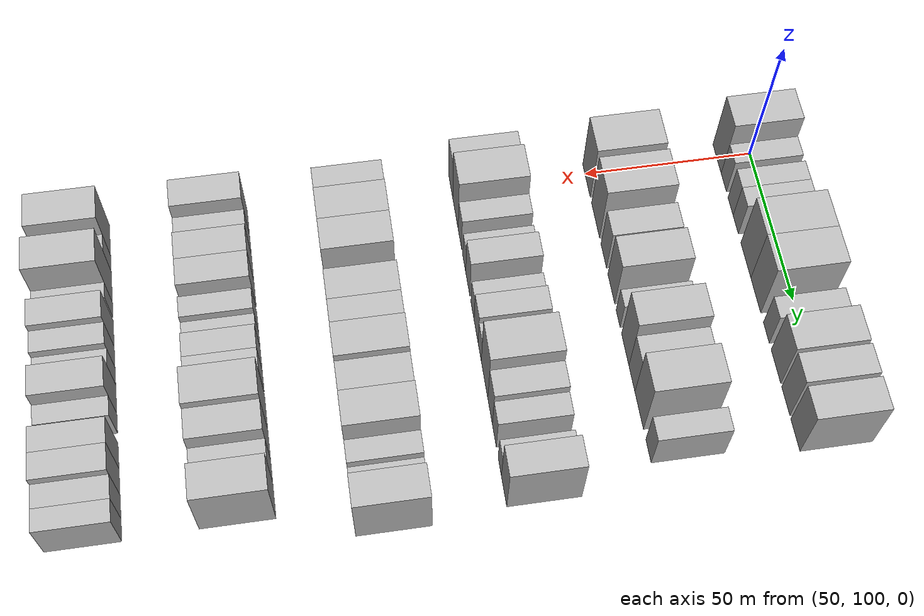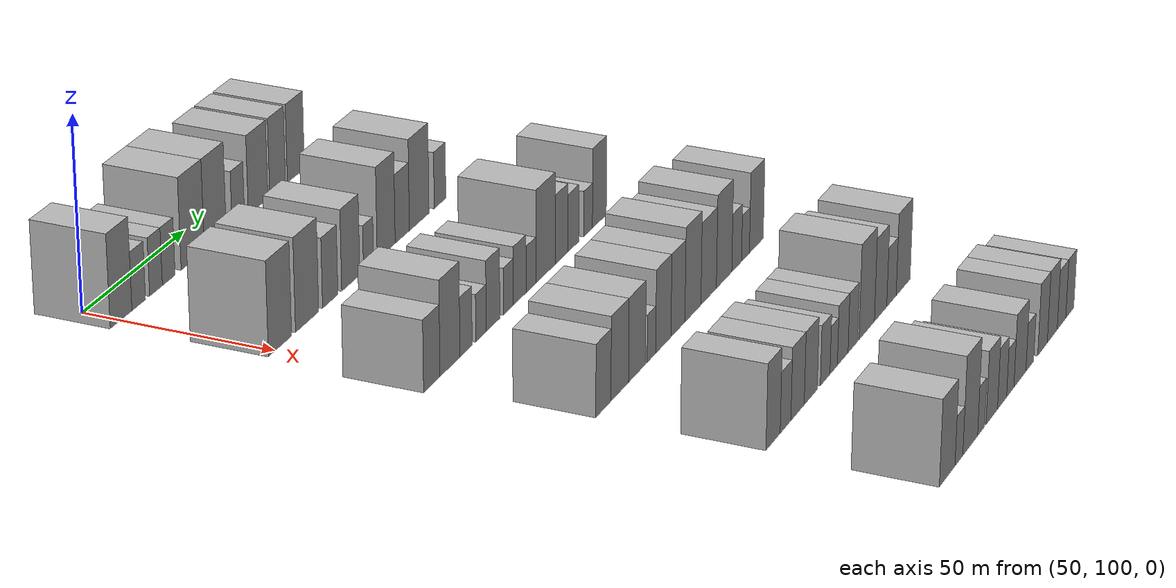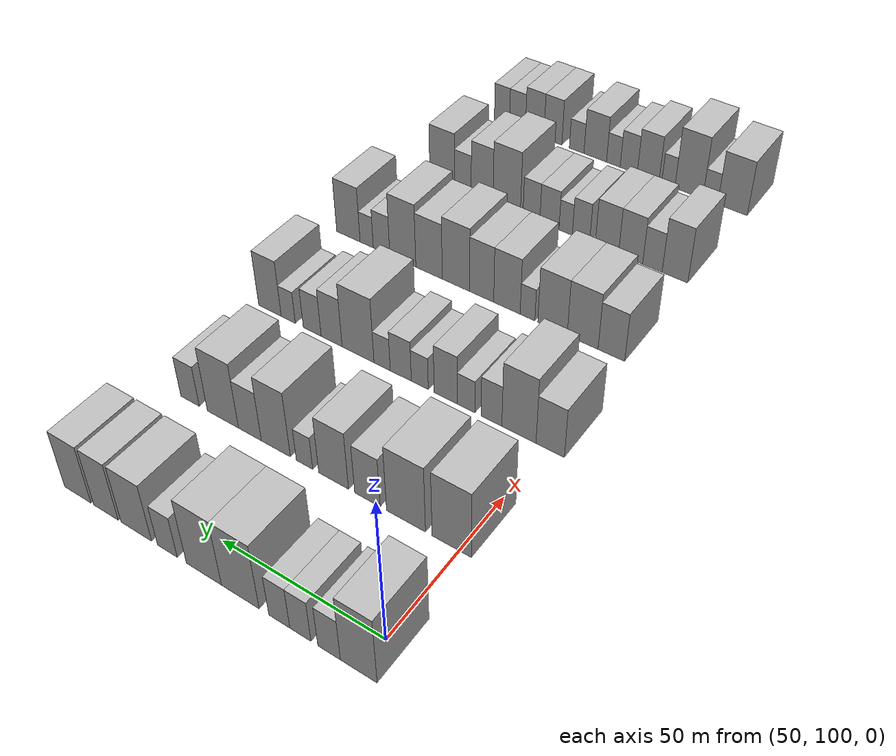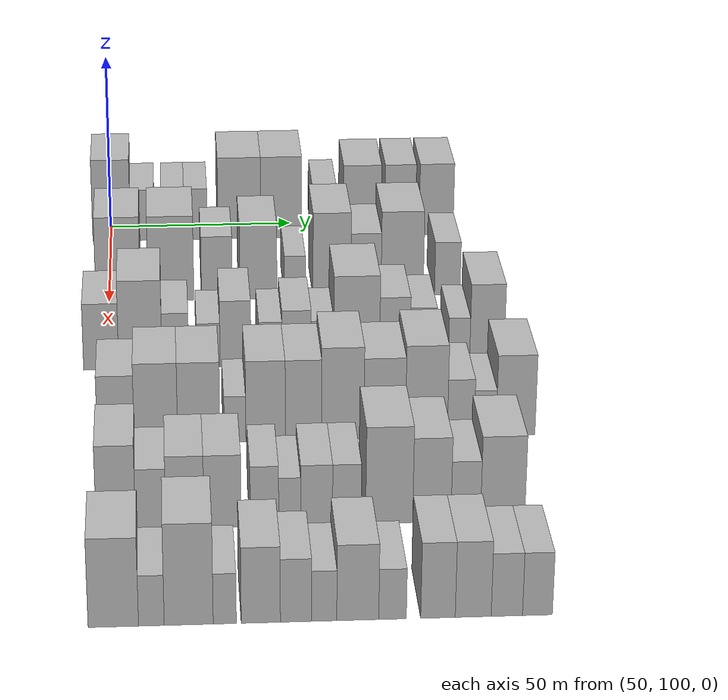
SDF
<sdf version="1.6">
 <world name="default">
  <model name="building_82">
   <static>1</static>
   <pose>50.0000 100.2320 0 0.000000 0.000000 0.000000</pose>
   <link name="link">
    <pose>0 0 12.00 0 0 0</pose>
    <collision name="collision"><geometry><box><size>20.0000 10.3977 24.0000</size></box></geometry></collision>
    <visual name="visual">
     <cast_shadows>0</cast_shadows>
     <geometry><box><size>20.0000 10.3977 24.0000</size></box></geometry>
     <material>
      <script>
       <uri>model://HANNAS_wall/materials/scripts</uri>
       <uri>model://HANNAS_wall/materials/textures</uri>
       <name>vrc/HANNAS_wall</name>
      </script>
     </material>
    </visual>
   </link>
  </model>
  <model name="building_83">
   <static>1</static>
   <pose>50.0000 108.7038 0 0.000000 0.000000 0.000000</pose>
   <link name="link">
    <pose>0 0 7.50 0 0 0</pose>
    <collision name="collision"><geometry><box><size>20.0000 6.5460 15.0000</size></box></geometry></collision>
    <visual name="visual">
     <cast_shadows>0</cast_shadows>
     <geometry><box><size>20.0000 6.5460 15.0000</size></box></geometry>
     <material>
      <script>
       <uri>model://HANNAS_wall/materials/scripts</uri>
       <uri>model://HANNAS_wall/materials/textures</uri>
       <name>vrc/HANNAS_wall</name>
      </script>
     </material>
    </visual>
   </link>
  </model>
  <model name="building_84">
   <static>1</static>
   <pose>50.0000 117.1123 0 0.000000 0.000000 0.000000</pose>
   <link name="link">
    <pose>0 0 7.50 0 0 0</pose>
    <collision name="collision"><geometry><box><size>20.0000 6.2710 15.0000</size></box></geometry></collision>
    <visual name="visual">
     <cast_shadows>0</cast_shadows>
     <geometry><box><size>20.0000 6.2710 15.0000</size></box></geometry>
     <material>
      <script>
       <uri>model://HANNAS_wall/materials/scripts</uri>
       <uri>model://HANNAS_wall/materials/textures</uri>
       <name>vrc/HANNAS_wall</name>
      </script>
     </material>
    </visual>
   </link>
  </model>
  <model name="building_85">
   <static>1</static>
   <pose>50.0000 123.4167 0 0.000000 0.000000 0.000000</pose>
   <link name="link">
    <pose>0 0 7.50 0 0 0</pose>
    <collision name="collision"><geometry><box><size>20.0000 6.3378 15.0000</size></box></geometry></collision>
    <visual name="visual">
     <cast_shadows>0</cast_shadows>
     <geometry><box><size>20.0000 6.3378 15.0000</size></box></geometry>
     <material>
      <script>
       <uri>model://HANNAS_wall/materials/scripts</uri>
       <uri>model://HANNAS_wall/materials/textures</uri>
       <name>vrc/HANNAS_wall</name>
      </script>
     </material>
    </visual>
   </link>
  </model>
  <model name="building_86">
   <static>1</static>
   <pose>50.0000 135.4706 0 0.000000 0.000000 0.000000</pose>
   <link name="link">
    <pose>0 0 12.00 0 0 0</pose>
    <collision name="collision"><geometry><box><size>20.0000 11.7699 24.0000</size></box></geometry></collision>
    <visual name="visual">
     <cast_shadows>0</cast_shadows>
     <geometry><box><size>20.0000 11.7699 24.0000</size></box></geometry>
     <material>
      <script>
       <uri>model://HANNAS_wall/materials/scripts</uri>
       <uri>model://HANNAS_wall/materials/textures</uri>
       <name>vrc/HANNAS_wall</name>
      </script>
     </material>
    </visual>
   </link>
  </model>
  <model name="building_87">
   <static>1</static>
   <pose>50.0000 147.0180 0 0.000000 0.000000 0.000000</pose>
   <link name="link">
    <pose>0 0 12.00 0 0 0</pose>
    <collision name="collision"><geometry><box><size>20.0000 11.3249 24.0000</size></box></geometry></collision>
    <visual name="visual">
     <cast_shadows>0</cast_shadows>
     <geometry><box><size>20.0000 11.3249 24.0000</size></box></geometry>
     <material>
      <script>
       <uri>model://HANNAS_wall/materials/scripts</uri>
       <uri>model://HANNAS_wall/materials/textures</uri>
       <name>vrc/HANNAS_wall</name>
      </script>
     </material>
    </visual>
   </link>
  </model>
  <model name="building_88">
   <static>1</static>
   <pose>50.0000 158.9779 0 0.000000 0.000000 0.000000</pose>
   <link name="link">
    <pose>0 0 7.50 0 0 0</pose>
    <collision name="collision"><geometry><box><size>20.0000 6.5948 15.0000</size></box></geometry></collision>
    <visual name="visual">
     <cast_shadows>0</cast_shadows>
     <geometry><box><size>20.0000 6.5948 15.0000</size></box></geometry>
     <material>
      <script>
       <uri>model://HANNAS_wall/materials/scripts</uri>
       <uri>model://HANNAS_wall/materials/textures</uri>
       <name>vrc/HANNAS_wall</name>
      </script>
     </material>
    </visual>
   </link>
  </model>
  <model name="building_89">
   <static>1</static>
   <pose>50.0000 169.5128 0 0.000000 0.000000 0.000000</pose>
   <link name="link">
    <pose>0 0 10.50 0 0 0</pose>
    <collision name="collision"><geometry><box><size>20.0000 10.4752 21.0000</size></box></geometry></collision>
    <visual name="visual">
     <cast_shadows>0</cast_shadows>
     <geometry><box><size>20.0000 10.4752 21.0000</size></box></geometry>
     <material>
      <script>
       <uri>model://HANNAS_wall/materials/scripts</uri>
       <uri>model://HANNAS_wall/materials/textures</uri>
       <name>vrc/HANNAS_wall</name>
      </script>
     </material>
    </visual>
   </link>
  </model>
  <model name="building_90">
   <static>1</static>
   <pose>50.0000 180.0520 0 0.000000 0.000000 0.000000</pose>
   <link name="link">
    <pose>0 0 10.50 0 0 0</pose>
    <collision name="collision"><geometry><box><size>20.0000 8.6031 21.0000</size></box></geometry></collision>
    <visual name="visual">
     <cast_shadows>0</cast_shadows>
     <geometry><box><size>20.0000 8.6031 21.0000</size></box></geometry>
     <material>
      <script>
       <uri>model://HANNAS_wall/materials/scripts</uri>
       <uri>model://HANNAS_wall/materials/textures</uri>
       <name>vrc/HANNAS_wall</name>
      </script>
     </material>
    </visual>
   </link>
  </model>
  <model name="building_91">
   <static>1</static>
   <pose>50.0000 190.0894 0 0.000000 0.000000 0.000000</pose>
   <link name="link">
    <pose>0 0 10.50 0 0 0</pose>
    <collision name="collision"><geometry><box><size>20.0000 9.4717 21.0000</size></box></geometry></collision>
    <visual name="visual">
     <cast_shadows>0</cast_shadows>
     <geometry><box><size>20.0000 9.4717 21.0000</size></box></geometry>
     <material>
      <script>
       <uri>model://HANNAS_wall/materials/scripts</uri>
       <uri>model://HANNAS_wall/materials/textures</uri>
       <name>vrc/HANNAS_wall</name>
      </script>
     </material>
    </visual>
   </link>
  </model>
  <model name="building_222">
   <static>1</static>
   <pose>90.0000 102.3803 0 0.000000 0.000000 0.000000</pose>
   <link name="link">
    <pose>0 0 12.00 0 0 0</pose>
    <collision name="collision"><geometry><box><size>20.0000 11.6992 24.0000</size></box></geometry></collision>
    <visual name="visual">
     <cast_shadows>0</cast_shadows>
     <geometry><box><size>20.0000 11.6992 24.0000</size></box></geometry>
     <material>
      <script>
       <uri>model://HANNAS_wall/materials/scripts</uri>
       <uri>model://HANNAS_wall/materials/textures</uri>
       <name>vrc/HANNAS_wall</name>
      </script>
     </material>
    </visual>
   </link>
  </model>
  <model name="building_223">
   <static>1</static>
   <pose>90.0000 116.2236 0 0.000000 0.000000 0.000000</pose>
   <link name="link">
    <pose>0 0 12.00 0 0 0</pose>
    <collision name="collision"><geometry><box><size>20.0000 11.9874 24.0000</size></box></geometry></collision>
    <visual name="visual">
     <cast_shadows>0</cast_shadows>
     <geometry><box><size>20.0000 11.9874 24.0000</size></box></geometry>
     <material>
      <script>
       <uri>model://HANNAS_wall/materials/scripts</uri>
       <uri>model://HANNAS_wall/materials/textures</uri>
       <name>vrc/HANNAS_wall</name>
      </script>
     </material>
    </visual>
   </link>
  </model>
  <model name="building_224">
   <static>1</static>
   <pose>90.0000 128.2610 0 0.000000 0.000000 0.000000</pose>
   <link name="link">
    <pose>0 0 9.00 0 0 0</pose>
    <collision name="collision"><geometry><box><size>20.0000 8.0875 18.0000</size></box></geometry></collision>
    <visual name="visual">
     <cast_shadows>0</cast_shadows>
     <geometry><box><size>20.0000 8.0875 18.0000</size></box></geometry>
     <material>
      <script>
       <uri>model://HANNAS_wall/materials/scripts</uri>
       <uri>model://HANNAS_wall/materials/textures</uri>
       <name>vrc/HANNAS_wall</name>
      </script>
     </material>
    </visual>
   </link>
  </model>
  <model name="building_225">
   <static>1</static>
   <pose>90.0000 139.1630 0 0.000000 0.000000 0.000000</pose>
   <link name="link">
    <pose>0 0 10.50 0 0 0</pose>
    <collision name="collision"><geometry><box><size>20.0000 9.7165 21.0000</size></box></geometry></collision>
    <visual name="visual">
     <cast_shadows>0</cast_shadows>
     <geometry><box><size>20.0000 9.7165 21.0000</size></box></geometry>
     <material>
      <script>
       <uri>model://HANNAS_wall/materials/scripts</uri>
       <uri>model://HANNAS_wall/materials/textures</uri>
       <name>vrc/HANNAS_wall</name>
      </script>
     </material>
    </visual>
   </link>
  </model>
  <model name="building_226">
   <static>1</static>
   <pose>90.0000 148.7677 0 0.000000 0.000000 0.000000</pose>
   <link name="link">
    <pose>0 0 6.00 0 0 0</pose>
    <collision name="collision"><geometry><box><size>20.0000 5.4930 12.0000</size></box></geometry></collision>
    <visual name="visual">
     <cast_shadows>0</cast_shadows>
     <geometry><box><size>20.0000 5.4930 12.0000</size></box></geometry>
     <material>
      <script>
       <uri>model://HANNAS_wall/materials/scripts</uri>
       <uri>model://HANNAS_wall/materials/textures</uri>
       <name>vrc/HANNAS_wall</name>
      </script>
     </material>
    </visual>
   </link>
  </model>
  <model name="building_227">
   <static>1</static>
   <pose>90.0000 158.5005 0 0.000000 0.000000 0.000000</pose>
   <link name="link">
    <pose>0 0 12.00 0 0 0</pose>
    <collision name="collision"><geometry><box><size>20.0000 9.9727 24.0000</size></box></geometry></collision>
    <visual name="visual">
     <cast_shadows>0</cast_shadows>
     <geometry><box><size>20.0000 9.9727 24.0000</size></box></geometry>
     <material>
      <script>
       <uri>model://HANNAS_wall/materials/scripts</uri>
       <uri>model://HANNAS_wall/materials/textures</uri>
       <name>vrc/HANNAS_wall</name>
      </script>
     </material>
    </visual>
   </link>
  </model>
  <model name="building_228">
   <static>1</static>
   <pose>90.0000 167.4890 0 0.000000 0.000000 0.000000</pose>
   <link name="link">
    <pose>0 0 9.00 0 0 0</pose>
    <collision name="collision"><geometry><box><size>20.0000 8.0042 18.0000</size></box></geometry></collision>
    <visual name="visual">
     <cast_shadows>0</cast_shadows>
     <geometry><box><size>20.0000 8.0042 18.0000</size></box></geometry>
     <material>
      <script>
       <uri>model://HANNAS_wall/materials/scripts</uri>
       <uri>model://HANNAS_wall/materials/textures</uri>
       <name>vrc/HANNAS_wall</name>
      </script>
     </material>
    </visual>
   </link>
  </model>
  <model name="building_229">
   <static>1</static>
   <pose>90.0000 177.0655 0 0.000000 0.000000 0.000000</pose>
   <link name="link">
    <pose>0 0 12.00 0 0 0</pose>
    <collision name="collision"><geometry><box><size>20.0000 11.1488 24.0000</size></box></geometry></collision>
    <visual name="visual">
     <cast_shadows>0</cast_shadows>
     <geometry><box><size>20.0000 11.1488 24.0000</size></box></geometry>
     <material>
      <script>
       <uri>model://HANNAS_wall/materials/scripts</uri>
       <uri>model://HANNAS_wall/materials/textures</uri>
       <name>vrc/HANNAS_wall</name>
      </script>
     </material>
    </visual>
   </link>
  </model>
  <model name="building_230">
   <static>1</static>
   <pose>90.0000 189.0228 0 0.000000 0.000000 0.000000</pose>
   <link name="link">
    <pose>0 0 7.50 0 0 0</pose>
    <collision name="collision"><geometry><box><size>20.0000 6.7658 15.0000</size></box></geometry></collision>
    <visual name="visual">
     <cast_shadows>0</cast_shadows>
     <geometry><box><size>20.0000 6.7658 15.0000</size></box></geometry>
     <material>
      <script>
       <uri>model://HANNAS_wall/materials/scripts</uri>
       <uri>model://HANNAS_wall/materials/textures</uri>
       <name>vrc/HANNAS_wall</name>
      </script>
     </material>
    </visual>
   </link>
  </model>
  <model name="building_358">
   <static>1</static>
   <pose>130.0000 98.5288 0 0.000000 0.000000 0.000000</pose>
   <link name="link">
    <pose>0 0 9.00 0 0 0</pose>
    <collision name="collision"><geometry><box><size>20.0000 8.7118 18.0000</size></box></geometry></collision>
    <visual name="visual">
     <cast_shadows>0</cast_shadows>
     <geometry><box><size>20.0000 8.7118 18.0000</size></box></geometry>
     <material>
      <script>
       <uri>model://HANNAS_wall/materials/scripts</uri>
       <uri>model://HANNAS_wall/materials/textures</uri>
       <name>vrc/HANNAS_wall</name>
      </script>
     </material>
    </visual>
   </link>
  </model>
  <model name="building_359">
   <static>1</static>
   <pose>130.0000 108.2567 0 0.000000 0.000000 0.000000</pose>
   <link name="link">
    <pose>0 0 12.00 0 0 0</pose>
    <collision name="collision"><geometry><box><size>20.0000 10.7441 24.0000</size></box></geometry></collision>
    <visual name="visual">
     <cast_shadows>0</cast_shadows>
     <geometry><box><size>20.0000 10.7441 24.0000</size></box></geometry>
     <material>
      <script>
       <uri>model://HANNAS_wall/materials/scripts</uri>
       <uri>model://HANNAS_wall/materials/textures</uri>
       <name>vrc/HANNAS_wall</name>
      </script>
     </material>
    </visual>
   </link>
  </model>
  <model name="building_360">
   <static>1</static>
   <pose>130.0000 116.9499 0 0.000000 0.000000 0.000000</pose>
   <link name="link">
    <pose>0 0 7.50 0 0 0</pose>
    <collision name="collision"><geometry><box><size>20.0000 6.6422 15.0000</size></box></geometry></collision>
    <visual name="visual">
     <cast_shadows>0</cast_shadows>
     <geometry><box><size>20.0000 6.6422 15.0000</size></box></geometry>
     <material>
      <script>
       <uri>model://HANNAS_wall/materials/scripts</uri>
       <uri>model://HANNAS_wall/materials/textures</uri>
       <name>vrc/HANNAS_wall</name>
      </script>
     </material>
    </visual>
   </link>
  </model>
  <model name="building_361">
   <static>1</static>
   <pose>130.0000 125.1638 0 0.000000 0.000000 0.000000</pose>
   <link name="link">
    <pose>0 0 6.00 0 0 0</pose>
    <collision name="collision"><geometry><box><size>20.0000 5.7855 12.0000</size></box></geometry></collision>
    <visual name="visual">
     <cast_shadows>0</cast_shadows>
     <geometry><box><size>20.0000 5.7855 12.0000</size></box></geometry>
     <material>
      <script>
       <uri>model://HANNAS_wall/materials/scripts</uri>
       <uri>model://HANNAS_wall/materials/textures</uri>
       <name>vrc/HANNAS_wall</name>
      </script>
     </material>
    </visual>
   </link>
  </model>
  <model name="building_362">
   <static>1</static>
   <pose>130.0000 131.8885 0 0.000000 0.000000 0.000000</pose>
   <link name="link">
    <pose>0 0 9.00 0 0 0</pose>
    <collision name="collision"><geometry><box><size>20.0000 7.6640 18.0000</size></box></geometry></collision>
    <visual name="visual">
     <cast_shadows>0</cast_shadows>
     <geometry><box><size>20.0000 7.6640 18.0000</size></box></geometry>
     <material>
      <script>
       <uri>model://HANNAS_wall/materials/scripts</uri>
       <uri>model://HANNAS_wall/materials/textures</uri>
       <name>vrc/HANNAS_wall</name>
      </script>
     </material>
    </visual>
   </link>
  </model>
  <model name="building_363">
   <static>1</static>
   <pose>130.0000 140.5915 0 0.000000 0.000000 0.000000</pose>
   <link name="link">
    <pose>0 0 6.00 0 0 0</pose>
    <collision name="collision"><geometry><box><size>20.0000 5.7419 12.0000</size></box></geometry></collision>
    <visual name="visual">
     <cast_shadows>0</cast_shadows>
     <geometry><box><size>20.0000 5.7419 12.0000</size></box></geometry>
     <material>
      <script>
       <uri>model://HANNAS_wall/materials/scripts</uri>
       <uri>model://HANNAS_wall/materials/textures</uri>
       <name>vrc/HANNAS_wall</name>
      </script>
     </material>
    </visual>
   </link>
  </model>
  <model name="building_364">
   <static>1</static>
   <pose>130.0000 147.1009 0 0.000000 0.000000 0.000000</pose>
   <link name="link">
    <pose>0 0 7.50 0 0 0</pose>
    <collision name="collision"><geometry><box><size>20.0000 7.2769 15.0000</size></box></geometry></collision>
    <visual name="visual">
     <cast_shadows>0</cast_shadows>
     <geometry><box><size>20.0000 7.2769 15.0000</size></box></geometry>
     <material>
      <script>
       <uri>model://HANNAS_wall/materials/scripts</uri>
       <uri>model://HANNAS_wall/materials/textures</uri>
       <name>vrc/HANNAS_wall</name>
      </script>
     </material>
    </visual>
   </link>
  </model>
  <model name="building_365">
   <static>1</static>
   <pose>130.0000 153.5853 0 0.000000 0.000000 0.000000</pose>
   <link name="link">
    <pose>0 0 6.00 0 0 0</pose>
    <collision name="collision"><geometry><box><size>20.0000 5.6920 12.0000</size></box></geometry></collision>
    <visual name="visual">
     <cast_shadows>0</cast_shadows>
     <geometry><box><size>20.0000 5.6920 12.0000</size></box></geometry>
     <material>
      <script>
       <uri>model://HANNAS_wall/materials/scripts</uri>
       <uri>model://HANNAS_wall/materials/textures</uri>
       <name>vrc/HANNAS_wall</name>
      </script>
     </material>
    </visual>
   </link>
  </model>
  <model name="building_366">
   <static>1</static>
   <pose>130.0000 162.1279 0 0.000000 0.000000 0.000000</pose>
   <link name="link">
    <pose>0 0 12.00 0 0 0</pose>
    <collision name="collision"><geometry><box><size>20.0000 11.3932 24.0000</size></box></geometry></collision>
    <visual name="visual">
     <cast_shadows>0</cast_shadows>
     <geometry><box><size>20.0000 11.3932 24.0000</size></box></geometry>
     <material>
      <script>
       <uri>model://HANNAS_wall/materials/scripts</uri>
       <uri>model://HANNAS_wall/materials/textures</uri>
       <name>vrc/HANNAS_wall</name>
      </script>
     </material>
    </visual>
   </link>
  </model>
  <model name="building_367">
   <static>1</static>
   <pose>130.0000 171.6553 0 0.000000 0.000000 0.000000</pose>
   <link name="link">
    <pose>0 0 9.00 0 0 0</pose>
    <collision name="collision"><geometry><box><size>20.0000 7.6616 18.0000</size></box></geometry></collision>
    <visual name="visual">
     <cast_shadows>0</cast_shadows>
     <geometry><box><size>20.0000 7.6616 18.0000</size></box></geometry>
     <material>
      <script>
       <uri>model://HANNAS_wall/materials/scripts</uri>
       <uri>model://HANNAS_wall/materials/textures</uri>
       <name>vrc/HANNAS_wall</name>
      </script>
     </material>
    </visual>
   </link>
  </model>
  <model name="building_368">
   <static>1</static>
   <pose>130.0000 178.7866 0 0.000000 0.000000 0.000000</pose>
   <link name="link">
    <pose>0 0 7.50 0 0 0</pose>
    <collision name="collision"><geometry><box><size>20.0000 6.6009 15.0000</size></box></geometry></collision>
    <visual name="visual">
     <cast_shadows>0</cast_shadows>
     <geometry><box><size>20.0000 6.6009 15.0000</size></box></geometry>
     <material>
      <script>
       <uri>model://HANNAS_wall/materials/scripts</uri>
       <uri>model://HANNAS_wall/materials/textures</uri>
       <name>vrc/HANNAS_wall</name>
      </script>
     </material>
    </visual>
   </link>
  </model>
  <model name="building_369">
   <static>1</static>
   <pose>130.0000 187.7524 0 0.000000 0.000000 0.000000</pose>
   <link name="link">
    <pose>0 0 6.00 0 0 0</pose>
    <collision name="collision"><geometry><box><size>20.0000 5.3307 12.0000</size></box></geometry></collision>
    <visual name="visual">
     <cast_shadows>0</cast_shadows>
     <geometry><box><size>20.0000 5.3307 12.0000</size></box></geometry>
     <material>
      <script>
       <uri>model://HANNAS_wall/materials/scripts</uri>
       <uri>model://HANNAS_wall/materials/textures</uri>
       <name>vrc/HANNAS_wall</name>
      </script>
     </material>
    </visual>
   </link>
  </model>
  <model name="building_370">
   <static>1</static>
   <pose>130.0000 194.7362 0 0.000000 0.000000 0.000000</pose>
   <link name="link">
    <pose>0 0 10.50 0 0 0</pose>
    <collision name="collision"><geometry><box><size>20.0000 8.6368 21.0000</size></box></geometry></collision>
    <visual name="visual">
     <cast_shadows>0</cast_shadows>
     <geometry><box><size>20.0000 8.6368 21.0000</size></box></geometry>
     <material>
      <script>
       <uri>model://HANNAS_wall/materials/scripts</uri>
       <uri>model://HANNAS_wall/materials/textures</uri>
       <name>vrc/HANNAS_wall</name>
      </script>
     </material>
    </visual>
   </link>
  </model>
  <model name="building_490">
   <static>1</static>
   <pose>170.0000 102.5634 0 0.000000 0.000000 0.000000</pose>
   <link name="link">
    <pose>0 0 9.00 0 0 0</pose>
    <collision name="collision"><geometry><box><size>20.0000 8.6067 18.0000</size></box></geometry></collision>
    <visual name="visual">
     <cast_shadows>0</cast_shadows>
     <geometry><box><size>20.0000 8.6067 18.0000</size></box></geometry>
     <material>
      <script>
       <uri>model://HANNAS_wall/materials/scripts</uri>
       <uri>model://HANNAS_wall/materials/textures</uri>
       <name>vrc/HANNAS_wall</name>
      </script>
     </material>
    </visual>
   </link>
  </model>
  <model name="building_491">
   <static>1</static>
   <pose>170.0000 111.9612 0 0.000000 0.000000 0.000000</pose>
   <link name="link">
    <pose>0 0 10.50 0 0 0</pose>
    <collision name="collision"><geometry><box><size>20.0000 10.1888 21.0000</size></box></geometry></collision>
    <visual name="visual">
     <cast_shadows>0</cast_shadows>
     <geometry><box><size>20.0000 10.1888 21.0000</size></box></geometry>
     <material>
      <script>
       <uri>model://HANNAS_wall/materials/scripts</uri>
       <uri>model://HANNAS_wall/materials/textures</uri>
       <name>vrc/HANNAS_wall</name>
      </script>
     </material>
    </visual>
   </link>
  </model>
  <model name="building_492">
   <static>1</static>
   <pose>170.0000 122.0177 0 0.000000 0.000000 0.000000</pose>
   <link name="link">
    <pose>0 0 10.50 0 0 0</pose>
    <collision name="collision"><geometry><box><size>20.0000 9.9243 21.0000</size></box></geometry></collision>
    <visual name="visual">
     <cast_shadows>0</cast_shadows>
     <geometry><box><size>20.0000 9.9243 21.0000</size></box></geometry>
     <material>
      <script>
       <uri>model://HANNAS_wall/materials/scripts</uri>
       <uri>model://HANNAS_wall/materials/textures</uri>
       <name>vrc/HANNAS_wall</name>
      </script>
     </material>
    </visual>
   </link>
  </model>
  <model name="building_493">
   <static>1</static>
   <pose>170.0000 130.5193 0 0.000000 0.000000 0.000000</pose>
   <link name="link">
    <pose>0 0 6.00 0 0 0</pose>
    <collision name="collision"><geometry><box><size>20.0000 5.0789 12.0000</size></box></geometry></collision>
    <visual name="visual">
     <cast_shadows>0</cast_shadows>
     <geometry><box><size>20.0000 5.0789 12.0000</size></box></geometry>
     <material>
      <script>
       <uri>model://HANNAS_wall/materials/scripts</uri>
       <uri>model://HANNAS_wall/materials/textures</uri>
       <name>vrc/HANNAS_wall</name>
      </script>
     </material>
    </visual>
   </link>
  </model>
  <model name="building_494">
   <static>1</static>
   <pose>170.0000 137.6943 0 0.000000 0.000000 0.000000</pose>
   <link name="link">
    <pose>0 0 10.50 0 0 0</pose>
    <collision name="collision"><geometry><box><size>20.0000 9.2711 21.0000</size></box></geometry></collision>
    <visual name="visual">
     <cast_shadows>0</cast_shadows>
     <geometry><box><size>20.0000 9.2711 21.0000</size></box></geometry>
     <material>
      <script>
       <uri>model://HANNAS_wall/materials/scripts</uri>
       <uri>model://HANNAS_wall/materials/textures</uri>
       <name>vrc/HANNAS_wall</name>
      </script>
     </material>
    </visual>
   </link>
  </model>
  <model name="building_495">
   <static>1</static>
   <pose>170.0000 146.6038 0 0.000000 0.000000 0.000000</pose>
   <link name="link">
    <pose>0 0 10.50 0 0 0</pose>
    <collision name="collision"><geometry><box><size>20.0000 8.5479 21.0000</size></box></geometry></collision>
    <visual name="visual">
     <cast_shadows>0</cast_shadows>
     <geometry><box><size>20.0000 8.5479 21.0000</size></box></geometry>
     <material>
      <script>
       <uri>model://HANNAS_wall/materials/scripts</uri>
       <uri>model://HANNAS_wall/materials/textures</uri>
       <name>vrc/HANNAS_wall</name>
      </script>
     </material>
    </visual>
   </link>
  </model>
  <model name="building_496">
   <static>1</static>
   <pose>170.0000 155.8745 0 0.000000 0.000000 0.000000</pose>
   <link name="link">
    <pose>0 0 12.00 0 0 0</pose>
    <collision name="collision"><geometry><box><size>20.0000 9.9935 24.0000</size></box></geometry></collision>
    <visual name="visual">
     <cast_shadows>0</cast_shadows>
     <geometry><box><size>20.0000 9.9935 24.0000</size></box></geometry>
     <material>
      <script>
       <uri>model://HANNAS_wall/materials/scripts</uri>
       <uri>model://HANNAS_wall/materials/textures</uri>
       <name>vrc/HANNAS_wall</name>
      </script>
     </material>
    </visual>
   </link>
  </model>
  <model name="building_497">
   <static>1</static>
   <pose>170.0000 165.7739 0 0.000000 0.000000 0.000000</pose>
   <link name="link">
    <pose>0 0 10.50 0 0 0</pose>
    <collision name="collision"><geometry><box><size>20.0000 9.8053 21.0000</size></box></geometry></collision>
    <visual name="visual">
     <cast_shadows>0</cast_shadows>
     <geometry><box><size>20.0000 9.8053 21.0000</size></box></geometry>
     <material>
      <script>
       <uri>model://HANNAS_wall/materials/scripts</uri>
       <uri>model://HANNAS_wall/materials/textures</uri>
       <name>vrc/HANNAS_wall</name>
      </script>
     </material>
    </visual>
   </link>
  </model>
  <model name="building_498">
   <static>1</static>
   <pose>170.0000 175.6447 0 0.000000 0.000000 0.000000</pose>
   <link name="link">
    <pose>0 0 12.00 0 0 0</pose>
    <collision name="collision"><geometry><box><size>20.0000 9.9363 24.0000</size></box></geometry></collision>
    <visual name="visual">
     <cast_shadows>0</cast_shadows>
     <geometry><box><size>20.0000 9.9363 24.0000</size></box></geometry>
     <material>
      <script>
       <uri>model://HANNAS_wall/materials/scripts</uri>
       <uri>model://HANNAS_wall/materials/textures</uri>
       <name>vrc/HANNAS_wall</name>
      </script>
     </material>
    </visual>
   </link>
  </model>
  <model name="building_499">
   <static>1</static>
   <pose>170.0000 183.7962 0 0.000000 0.000000 0.000000</pose>
   <link name="link">
    <pose>0 0 7.50 0 0 0</pose>
    <collision name="collision"><geometry><box><size>20.0000 6.3666 15.0000</size></box></geometry></collision>
    <visual name="visual">
     <cast_shadows>0</cast_shadows>
     <geometry><box><size>20.0000 6.3666 15.0000</size></box></geometry>
     <material>
      <script>
       <uri>model://HANNAS_wall/materials/scripts</uri>
       <uri>model://HANNAS_wall/materials/textures</uri>
       <name>vrc/HANNAS_wall</name>
      </script>
     </material>
    </visual>
   </link>
  </model>
  <model name="building_500">
   <static>1</static>
   <pose>170.0000 189.5695 0 0.000000 0.000000 0.000000</pose>
   <link name="link">
    <pose>0 0 6.00 0 0 0</pose>
    <collision name="collision"><geometry><box><size>20.0000 5.1799 12.0000</size></box></geometry></collision>
    <visual name="visual">
     <cast_shadows>0</cast_shadows>
     <geometry><box><size>20.0000 5.1799 12.0000</size></box></geometry>
     <material>
      <script>
       <uri>model://HANNAS_wall/materials/scripts</uri>
       <uri>model://HANNAS_wall/materials/textures</uri>
       <name>vrc/HANNAS_wall</name>
      </script>
     </material>
    </visual>
   </link>
  </model>
  <model name="building_501">
   <static>1</static>
   <pose>170.0000 196.7788 0 0.000000 0.000000 0.000000</pose>
   <link name="link">
    <pose>0 0 10.50 0 0 0</pose>
    <collision name="collision"><geometry><box><size>20.0000 9.2387 21.0000</size></box></geometry></collision>
    <visual name="visual">
     <cast_shadows>0</cast_shadows>
     <geometry><box><size>20.0000 9.2387 21.0000</size></box></geometry>
     <material>
      <script>
       <uri>model://HANNAS_wall/materials/scripts</uri>
       <uri>model://HANNAS_wall/materials/textures</uri>
       <name>vrc/HANNAS_wall</name>
      </script>
     </material>
    </visual>
   </link>
  </model>
  <model name="building_623">
   <static>1</static>
   <pose>210.0000 102.9729 0 0.000000 0.000000 0.000000</pose>
   <link name="link">
    <pose>0 0 10.50 0 0 0</pose>
    <collision name="collision"><geometry><box><size>20.0000 8.6839 21.0000</size></box></geometry></collision>
    <visual name="visual">
     <cast_shadows>0</cast_shadows>
     <geometry><box><size>20.0000 8.6839 21.0000</size></box></geometry>
     <material>
      <script>
       <uri>model://HANNAS_wall/materials/scripts</uri>
       <uri>model://HANNAS_wall/materials/textures</uri>
       <name>vrc/HANNAS_wall</name>
      </script>
     </material>
    </visual>
   </link>
  </model>
  <model name="building_624">
   <static>1</static>
   <pose>210.0000 110.6436 0 0.000000 0.000000 0.000000</pose>
   <link name="link">
    <pose>0 0 7.50 0 0 0</pose>
    <collision name="collision"><geometry><box><size>20.0000 6.6575 15.0000</size></box></geometry></collision>
    <visual name="visual">
     <cast_shadows>0</cast_shadows>
     <geometry><box><size>20.0000 6.6575 15.0000</size></box></geometry>
     <material>
      <script>
       <uri>model://HANNAS_wall/materials/scripts</uri>
       <uri>model://HANNAS_wall/materials/textures</uri>
       <name>vrc/HANNAS_wall</name>
      </script>
     </material>
    </visual>
   </link>
  </model>
  <model name="building_625">
   <static>1</static>
   <pose>210.0000 118.1810 0 0.000000 0.000000 0.000000</pose>
   <link name="link">
    <pose>0 0 9.00 0 0 0</pose>
    <collision name="collision"><geometry><box><size>20.0000 8.4174 18.0000</size></box></geometry></collision>
    <visual name="visual">
     <cast_shadows>0</cast_shadows>
     <geometry><box><size>20.0000 8.4174 18.0000</size></box></geometry>
     <material>
      <script>
       <uri>model://HANNAS_wall/materials/scripts</uri>
       <uri>model://HANNAS_wall/materials/textures</uri>
       <name>vrc/HANNAS_wall</name>
      </script>
     </material>
    </visual>
   </link>
  </model>
  <model name="building_626">
   <static>1</static>
   <pose>210.0000 126.5205 0 0.000000 0.000000 0.000000</pose>
   <link name="link">
    <pose>0 0 9.00 0 0 0</pose>
    <collision name="collision"><geometry><box><size>20.0000 8.2616 18.0000</size></box></geometry></collision>
    <visual name="visual">
     <cast_shadows>0</cast_shadows>
     <geometry><box><size>20.0000 8.2616 18.0000</size></box></geometry>
     <material>
      <script>
       <uri>model://HANNAS_wall/materials/scripts</uri>
       <uri>model://HANNAS_wall/materials/textures</uri>
       <name>vrc/HANNAS_wall</name>
      </script>
     </material>
    </visual>
   </link>
  </model>
  <model name="building_627">
   <static>1</static>
   <pose>210.0000 135.7900 0 0.000000 0.000000 0.000000</pose>
   <link name="link">
    <pose>0 0 7.50 0 0 0</pose>
    <collision name="collision"><geometry><box><size>20.0000 6.2774 15.0000</size></box></geometry></collision>
    <visual name="visual">
     <cast_shadows>0</cast_shadows>
     <geometry><box><size>20.0000 6.2774 15.0000</size></box></geometry>
     <material>
      <script>
       <uri>model://HANNAS_wall/materials/scripts</uri>
       <uri>model://HANNAS_wall/materials/textures</uri>
       <name>vrc/HANNAS_wall</name>
      </script>
     </material>
    </visual>
   </link>
  </model>
  <model name="building_628">
   <static>1</static>
   <pose>210.0000 141.3635 0 0.000000 0.000000 0.000000</pose>
   <link name="link">
    <pose>0 0 6.00 0 0 0</pose>
    <collision name="collision"><geometry><box><size>20.0000 4.8696 12.0000</size></box></geometry></collision>
    <visual name="visual">
     <cast_shadows>0</cast_shadows>
     <geometry><box><size>20.0000 4.8696 12.0000</size></box></geometry>
     <material>
      <script>
       <uri>model://HANNAS_wall/materials/scripts</uri>
       <uri>model://HANNAS_wall/materials/textures</uri>
       <name>vrc/HANNAS_wall</name>
      </script>
     </material>
    </visual>
   </link>
  </model>
  <model name="building_629">
   <static>1</static>
   <pose>210.0000 147.3326 0 0.000000 0.000000 0.000000</pose>
   <link name="link">
    <pose>0 0 7.50 0 0 0</pose>
    <collision name="collision"><geometry><box><size>20.0000 7.0686 15.0000</size></box></geometry></collision>
    <visual name="visual">
     <cast_shadows>0</cast_shadows>
     <geometry><box><size>20.0000 7.0686 15.0000</size></box></geometry>
     <material>
      <script>
       <uri>model://HANNAS_wall/materials/scripts</uri>
       <uri>model://HANNAS_wall/materials/textures</uri>
       <name>vrc/HANNAS_wall</name>
      </script>
     </material>
    </visual>
   </link>
  </model>
  <model name="building_630">
   <static>1</static>
   <pose>210.0000 154.0458 0 0.000000 0.000000 0.000000</pose>
   <link name="link">
    <pose>0 0 7.50 0 0 0</pose>
    <collision name="collision"><geometry><box><size>20.0000 6.3578 15.0000</size></box></geometry></collision>
    <visual name="visual">
     <cast_shadows>0</cast_shadows>
     <geometry><box><size>20.0000 6.3578 15.0000</size></box></geometry>
     <material>
      <script>
       <uri>model://HANNAS_wall/materials/scripts</uri>
       <uri>model://HANNAS_wall/materials/textures</uri>
       <name>vrc/HANNAS_wall</name>
      </script>
     </material>
    </visual>
   </link>
  </model>
  <model name="building_631">
   <static>1</static>
   <pose>210.0000 163.4594 0 0.000000 0.000000 0.000000</pose>
   <link name="link">
    <pose>0 0 12.00 0 0 0</pose>
    <collision name="collision"><geometry><box><size>20.0000 10.4693 24.0000</size></box></geometry></collision>
    <visual name="visual">
     <cast_shadows>0</cast_shadows>
     <geometry><box><size>20.0000 10.4693 24.0000</size></box></geometry>
     <material>
      <script>
       <uri>model://HANNAS_wall/materials/scripts</uri>
       <uri>model://HANNAS_wall/materials/textures</uri>
       <name>vrc/HANNAS_wall</name>
      </script>
     </material>
    </visual>
   </link>
  </model>
  <model name="building_632">
   <static>1</static>
   <pose>210.0000 172.9527 0 0.000000 0.000000 0.000000</pose>
   <link name="link">
    <pose>0 0 10.50 0 0 0</pose>
    <collision name="collision"><geometry><box><size>20.0000 8.5173 21.0000</size></box></geometry></collision>
    <visual name="visual">
     <cast_shadows>0</cast_shadows>
     <geometry><box><size>20.0000 8.5173 21.0000</size></box></geometry>
     <material>
      <script>
       <uri>model://HANNAS_wall/materials/scripts</uri>
       <uri>model://HANNAS_wall/materials/textures</uri>
       <name>vrc/HANNAS_wall</name>
      </script>
     </material>
    </visual>
   </link>
  </model>
  <model name="building_633">
   <static>1</static>
   <pose>210.0000 180.5119 0 0.000000 0.000000 0.000000</pose>
   <link name="link">
    <pose>0 0 7.50 0 0 0</pose>
    <collision name="collision"><geometry><box><size>20.0000 6.6011 15.0000</size></box></geometry></collision>
    <visual name="visual">
     <cast_shadows>0</cast_shadows>
     <geometry><box><size>20.0000 6.6011 15.0000</size></box></geometry>
     <material>
      <script>
       <uri>model://HANNAS_wall/materials/scripts</uri>
       <uri>model://HANNAS_wall/materials/textures</uri>
       <name>vrc/HANNAS_wall</name>
      </script>
     </material>
    </visual>
   </link>
  </model>
  <model name="building_634">
   <static>1</static>
   <pose>210.0000 188.7498 0 0.000000 0.000000 0.000000</pose>
   <link name="link">
    <pose>0 0 10.50 0 0 0</pose>
    <collision name="collision"><geometry><box><size>20.0000 9.8746 21.0000</size></box></geometry></collision>
    <visual name="visual">
     <cast_shadows>0</cast_shadows>
     <geometry><box><size>20.0000 9.8746 21.0000</size></box></geometry>
     <material>
      <script>
       <uri>model://HANNAS_wall/materials/scripts</uri>
       <uri>model://HANNAS_wall/materials/textures</uri>
       <name>vrc/HANNAS_wall</name>
      </script>
     </material>
    </visual>
   </link>
  </model>
  <model name="building_764">
   <static>1</static>
   <pose>250.0000 102.8343 0 0.000000 0.000000 0.000000</pose>
   <link name="link">
    <pose>0 0 10.50 0 0 0</pose>
    <collision name="collision"><geometry><box><size>20.0000 10.4051 21.0000</size></box></geometry></collision>
    <visual name="visual">
     <cast_shadows>0</cast_shadows>
     <geometry><box><size>20.0000 10.4051 21.0000</size></box></geometry>
     <material>
      <script>
       <uri>model://HANNAS_wall/materials/scripts</uri>
       <uri>model://HANNAS_wall/materials/textures</uri>
       <name>vrc/HANNAS_wall</name>
      </script>
     </material>
    </visual>
   </link>
  </model>
  <model name="building_765">
   <static>1</static>
   <pose>250.0000 110.6969 0 0.000000 0.000000 0.000000</pose>
   <link name="link">
    <pose>0 0 6.00 0 0 0</pose>
    <collision name="collision"><geometry><box><size>20.0000 5.3202 12.0000</size></box></geometry></collision>
    <visual name="visual">
     <cast_shadows>0</cast_shadows>
     <geometry><box><size>20.0000 5.3202 12.0000</size></box></geometry>
     <material>
      <script>
       <uri>model://HANNAS_wall/materials/scripts</uri>
       <uri>model://HANNAS_wall/materials/textures</uri>
       <name>vrc/HANNAS_wall</name>
      </script>
     </material>
    </visual>
   </link>
  </model>
  <model name="building_766">
   <static>1</static>
   <pose>250.0000 118.4257 0 0.000000 0.000000 0.000000</pose>
   <link name="link">
    <pose>0 0 12.00 0 0 0</pose>
    <collision name="collision"><geometry><box><size>20.0000 10.1373 24.0000</size></box></geometry></collision>
    <visual name="visual">
     <cast_shadows>0</cast_shadows>
     <geometry><box><size>20.0000 10.1373 24.0000</size></box></geometry>
     <material>
      <script>
       <uri>model://HANNAS_wall/materials/scripts</uri>
       <uri>model://HANNAS_wall/materials/textures</uri>
       <name>vrc/HANNAS_wall</name>
      </script>
     </material>
    </visual>
   </link>
  </model>
  <model name="building_767">
   <static>1</static>
   <pose>250.0000 125.9003 0 0.000000 0.000000 0.000000</pose>
   <link name="link">
    <pose>0 0 6.00 0 0 0</pose>
    <collision name="collision"><geometry><box><size>20.0000 4.8118 12.0000</size></box></geometry></collision>
    <visual name="visual">
     <cast_shadows>0</cast_shadows>
     <geometry><box><size>20.0000 4.8118 12.0000</size></box></geometry>
     <material>
      <script>
       <uri>model://HANNAS_wall/materials/scripts</uri>
       <uri>model://HANNAS_wall/materials/textures</uri>
       <name>vrc/HANNAS_wall</name>
      </script>
     </material>
    </visual>
   </link>
  </model>
  <model name="building_768">
   <static>1</static>
   <pose>250.0000 133.3686 0 0.000000 0.000000 0.000000</pose>
   <link name="link">
    <pose>0 0 9.00 0 0 0</pose>
    <collision name="collision"><geometry><box><size>20.0000 8.1250 18.0000</size></box></geometry></collision>
    <visual name="visual">
     <cast_shadows>0</cast_shadows>
     <geometry><box><size>20.0000 8.1250 18.0000</size></box></geometry>
     <material>
      <script>
       <uri>model://HANNAS_wall/materials/scripts</uri>
       <uri>model://HANNAS_wall/materials/textures</uri>
       <name>vrc/HANNAS_wall</name>
      </script>
     </material>
    </visual>
   </link>
  </model>
  <model name="building_769">
   <static>1</static>
   <pose>250.0000 140.6714 0 0.000000 0.000000 0.000000</pose>
   <link name="link">
    <pose>0 0 7.50 0 0 0</pose>
    <collision name="collision"><geometry><box><size>20.0000 6.4805 15.0000</size></box></geometry></collision>
    <visual name="visual">
     <cast_shadows>0</cast_shadows>
     <geometry><box><size>20.0000 6.4805 15.0000</size></box></geometry>
     <material>
      <script>
       <uri>model://HANNAS_wall/materials/scripts</uri>
       <uri>model://HANNAS_wall/materials/textures</uri>
       <name>vrc/HANNAS_wall</name>
      </script>
     </material>
    </visual>
   </link>
  </model>
  <model name="building_770">
   <static>1</static>
   <pose>250.0000 146.5331 0 0.000000 0.000000 0.000000</pose>
   <link name="link">
    <pose>0 0 6.00 0 0 0</pose>
    <collision name="collision"><geometry><box><size>20.0000 5.2429 12.0000</size></box></geometry></collision>
    <visual name="visual">
     <cast_shadows>0</cast_shadows>
     <geometry><box><size>20.0000 5.2429 12.0000</size></box></geometry>
     <material>
      <script>
       <uri>model://HANNAS_wall/materials/scripts</uri>
       <uri>model://HANNAS_wall/materials/textures</uri>
       <name>vrc/HANNAS_wall</name>
      </script>
     </material>
    </visual>
   </link>
  </model>
  <model name="building_771">
   <static>1</static>
   <pose>250.0000 153.5288 0 0.000000 0.000000 0.000000</pose>
   <link name="link">
    <pose>0 0 9.00 0 0 0</pose>
    <collision name="collision"><geometry><box><size>20.0000 8.7486 18.0000</size></box></geometry></collision>
    <visual name="visual">
     <cast_shadows>0</cast_shadows>
     <geometry><box><size>20.0000 8.7486 18.0000</size></box></geometry>
     <material>
      <script>
       <uri>model://HANNAS_wall/materials/scripts</uri>
       <uri>model://HANNAS_wall/materials/textures</uri>
       <name>vrc/HANNAS_wall</name>
      </script>
     </material>
    </visual>
   </link>
  </model>
  <model name="building_772">
   <static>1</static>
   <pose>250.0000 160.7806 0 0.000000 0.000000 0.000000</pose>
   <link name="link">
    <pose>0 0 6.00 0 0 0</pose>
    <collision name="collision"><geometry><box><size>20.0000 5.7551 12.0000</size></box></geometry></collision>
    <visual name="visual">
     <cast_shadows>0</cast_shadows>
     <geometry><box><size>20.0000 5.7551 12.0000</size></box></geometry>
     <material>
      <script>
       <uri>model://HANNAS_wall/materials/scripts</uri>
       <uri>model://HANNAS_wall/materials/textures</uri>
       <name>vrc/HANNAS_wall</name>
      </script>
     </material>
    </visual>
   </link>
  </model>
  <model name="building_773">
   <static>1</static>
   <pose>250.0000 170.2644 0 0.000000 0.000000 0.000000</pose>
   <link name="link">
    <pose>0 0 9.00 0 0 0</pose>
    <collision name="collision"><geometry><box><size>20.0000 7.2123 18.0000</size></box></geometry></collision>
    <visual name="visual">
     <cast_shadows>0</cast_shadows>
     <geometry><box><size>20.0000 7.2123 18.0000</size></box></geometry>
     <material>
      <script>
       <uri>model://HANNAS_wall/materials/scripts</uri>
       <uri>model://HANNAS_wall/materials/textures</uri>
       <name>vrc/HANNAS_wall</name>
      </script>
     </material>
    </visual>
   </link>
  </model>
  <model name="building_774">
   <static>1</static>
   <pose>250.0000 177.6288 0 0.000000 0.000000 0.000000</pose>
   <link name="link">
    <pose>0 0 9.00 0 0 0</pose>
    <collision name="collision"><geometry><box><size>20.0000 7.5166 18.0000</size></box></geometry></collision>
    <visual name="visual">
     <cast_shadows>0</cast_shadows>
     <geometry><box><size>20.0000 7.5166 18.0000</size></box></geometry>
     <material>
      <script>
       <uri>model://HANNAS_wall/materials/scripts</uri>
       <uri>model://HANNAS_wall/materials/textures</uri>
       <name>vrc/HANNAS_wall</name>
      </script>
     </material>
    </visual>
   </link>
  </model>
  <model name="building_775">
   <static>1</static>
   <pose>250.0000 184.6666 0 0.000000 0.000000 0.000000</pose>
   <link name="link">
    <pose>0 0 7.50 0 0 0</pose>
    <collision name="collision"><geometry><box><size>20.0000 6.5590 15.0000</size></box></geometry></collision>
    <visual name="visual">
     <cast_shadows>0</cast_shadows>
     <geometry><box><size>20.0000 6.5590 15.0000</size></box></geometry>
     <material>
      <script>
       <uri>model://HANNAS_wall/materials/scripts</uri>
       <uri>model://HANNAS_wall/materials/textures</uri>
       <name>vrc/HANNAS_wall</name>
      </script>
     </material>
    </visual>
   </link>
  </model>
  <model name="building_776">
   <static>1</static>
   <pose>250.0000 191.0762 0 0.000000 0.000000 0.000000</pose>
   <link name="link">
    <pose>0 0 7.50 0 0 0</pose>
    <collision name="collision"><geometry><box><size>20.0000 6.2601 15.0000</size></box></geometry></collision>
    <visual name="visual">
     <cast_shadows>0</cast_shadows>
     <geometry><box><size>20.0000 6.2601 15.0000</size></box></geometry>
     <material>
      <script>
       <uri>model://HANNAS_wall/materials/scripts</uri>
       <uri>model://HANNAS_wall/materials/textures</uri>
       <name>vrc/HANNAS_wall</name>
      </script>
     </material>
    </visual>
   </link>
  </model>
 </world>
</sdf>
